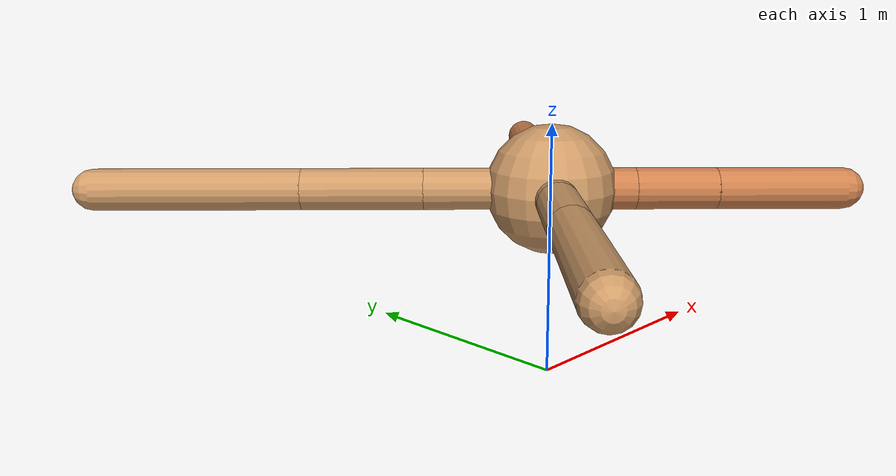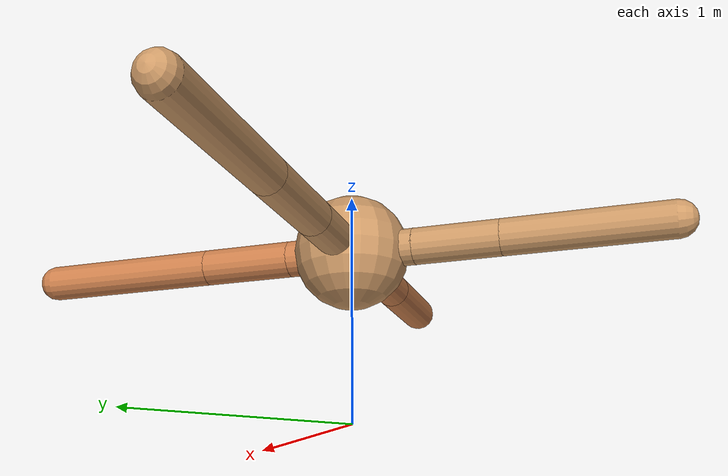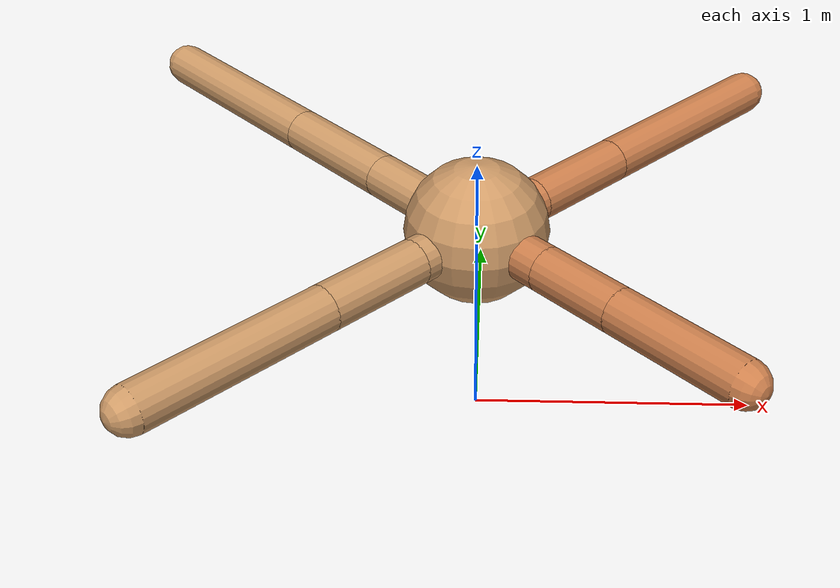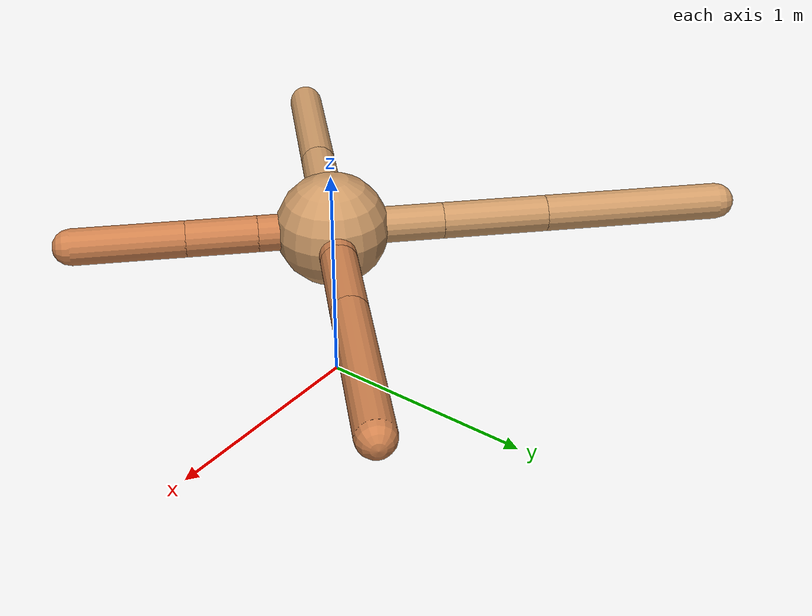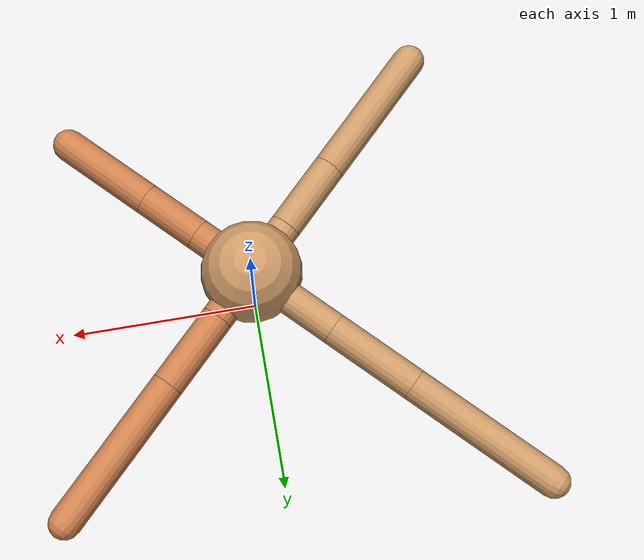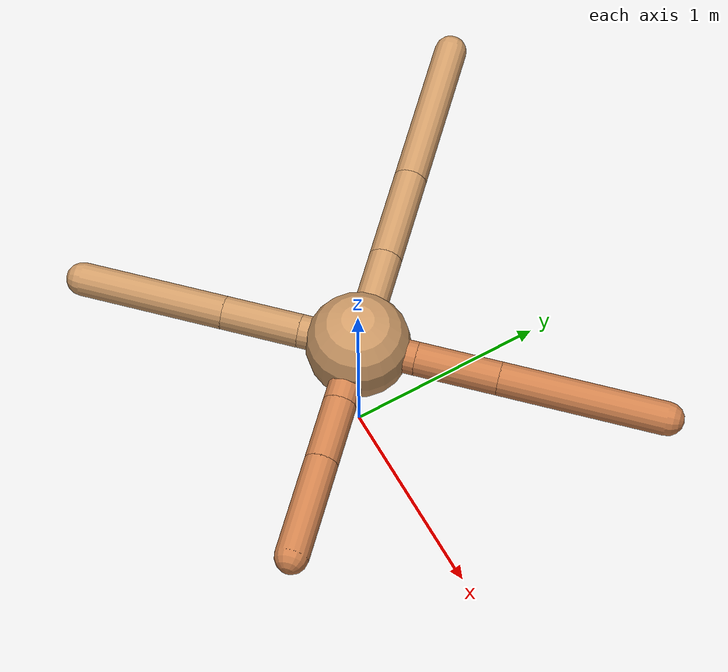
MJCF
<mujoco model="ant">
  <compiler angle="degree" coordinate="local" inertiafromgeom="true" />
  <option integrator="RK4" timestep="0.01" />
  <custom>
    <numeric data="0.0 0.0 0.55 1.0 0.0 0.0 0.0 0.0 1.0 0.0 -1.0 0.0 -1.0 0.0 1.0" name="init_qpos" />
  </custom>
  <default>
    <joint armature="1" damping="1" limited="true" />
    <geom conaffinity="0" condim="3" density="5.0" friction="1.5 0.1 0.1" margin="0.01" rgba="0.8 0.6 0.4 1" />
  </default>
  <worldbody>
    <body name="torso" pos="0 0 0.75">
      <geom name="torso_geom" pos="0 0 0" size="0.25" type="sphere" />

      <body name="front_left_leg" pos="0 0 0">
        <geom fromto="0.0 0.0 0.0 0.2 0.2 0.0" name="aux_1_geom" size="0.08" type="capsule" rgba=".8 .5 .3 1" />
        <body name="aux_1" pos="0.2 0.2 0.0">
          <joint axis="0 0 1" name="hip_1" pos="0.0 0.0 0.0" range="-40 40" type="hinge" />
          <geom fromto="0.0 0.0 0.0 0.2825271267609267 0.2825271267609267 0.0" name="left_leg_geom" size="0.08" type="capsule" rgba=".8 .5 .3 1" />
          <body pos="0.2825271267609267 0.2825271267609267 0.0" name="front_left_foot">
            <joint axis="-1 1 0" name="ankle_1" pos="0.0 0.0 0.0" range="30 100" type="hinge" />
            <geom fromto="0.0 0.0 0.0 0.5641718670430488 0.5641718670430488 0.0" name="left_ankle_geom" size="0.08" type="capsule" rgba=".8 .5 .3 1" />
          </body>
        </body>
      </body>
      <body name="front_right_leg" pos="0 0 0">
        <geom fromto="0.0 0.0 0.0 -0.345946735652877 0.345946735652877 0.0" name="aux_2_geom" size="0.08" type="capsule" />
        <body name="aux_2" pos="-0.345946735652877 0.345946735652877 0.0">
          <joint axis="0 0 1" name="hip_2" pos="0.0 0.0 0.0" range="-40 40" type="hinge" />
          <geom fromto="0.0 0.0 0.0 -0.32921673990043776 0.32921673990043776 0.0" name="right_leg_geom" size="0.08" type="capsule" />
          <body pos="-0.32921673990043776 0.32921673990043776 0.0" name="front_right_foot">
            <joint axis="1 1 0" name="ankle_2" pos="0.0 0.0 0.0" range="-100 -30" type="hinge" />
            <geom fromto="0.0 0.0 0.0 -0.5600068396366941 0.5600068396366941 0.0" name="right_ankle_geom" size="0.08" type="capsule" />
          </body>
        </body>
      </body>
      <body name="left_back_leg" pos="0 0 0">
        <geom fromto="0.0 0.0 0.0 -0.2 -0.2 0.0" name="aux_3_geom" size="0.08" type="capsule" />
        <body name="aux_3" pos="-0.2 -0.2 0.0">
          <joint axis="0 0 1" name="hip_3" pos="0.0 0.0 0.0" range="-40 40" type="hinge" />
          <geom fromto="0.0 0.0 0.0 -0.2643997745468515 -0.2643997745468515 0.0" name="back_leg_geom" size="0.08" type="capsule" />
          <body pos="-0.2643997745468515 -0.2643997745468515 0.0" name="left_back_foot">
            <joint axis="-1 1 0" name="ankle_3" pos="0.0 0.0 0.0" range="-100 -30" type="hinge" />
            <geom fromto="0.0 0.0 0.0 -0.49698924143059586 -0.49698924143059586 0.0" name="third_ankle_geom" size="0.08" type="capsule" />
          </body>
        </body>
      </body>
      <body name="right_back_leg" pos="0 0 0">
        <geom fromto="0.0 0.0 0.0 0.22939672922572682 -0.22939672922572682 0.0" name="aux_4_geom" size="0.08" type="capsule" rgba=".8 .5 .3 1" />
        <body name="aux_4" pos="0.22939672922572682 -0.22939672922572682 0.0">
          <joint axis="0 0 1" name="hip_4" pos="0.0 0.0 0.0" range="-40 40" type="hinge" />
          <geom fromto="0.0 0.0 0.0 0.22023861472323408 -0.22023861472323408 0.0" name="rightback_leg_geom" size="0.08" type="capsule" rgba=".8 .5 .3 1" />
          <body pos="0.22023861472323408 -0.22023861472323408 0.0" name="right_back_foot">
            <joint axis="1 1 0" name="ankle_4" pos="0.0 0.0 0.0" range="30 100" type="hinge" />
            <geom fromto="0.0 0.0 0.0 0.34498462095445703 -0.34498462095445703 0.0" name="fourth_ankle_geom" size="0.08" type="capsule" rgba=".8 .5 .3 1" />
          </body>
        </body>
      </body>
    </body>
  </worldbody>
  <actuator>
    <motor ctrllimited="true" ctrlrange="-1.0 1.0" joint="hip_4" gear="150" />
    <motor ctrllimited="true" ctrlrange="-1.0 1.0" joint="ankle_4" gear="150" />
    <motor ctrllimited="true" ctrlrange="-1.0 1.0" joint="hip_1" gear="150" />
    <motor ctrllimited="true" ctrlrange="-1.0 1.0" joint="ankle_1" gear="150" />
    <motor ctrllimited="true" ctrlrange="-1.0 1.0" joint="hip_2" gear="150" />
    <motor ctrllimited="true" ctrlrange="-1.0 1.0" joint="ankle_2" gear="150" />
    <motor ctrllimited="true" ctrlrange="-1.0 1.0" joint="hip_3" gear="150" />
    <motor ctrllimited="true" ctrlrange="-1.0 1.0" joint="ankle_3" gear="150" />
  </actuator>
</mujoco>
